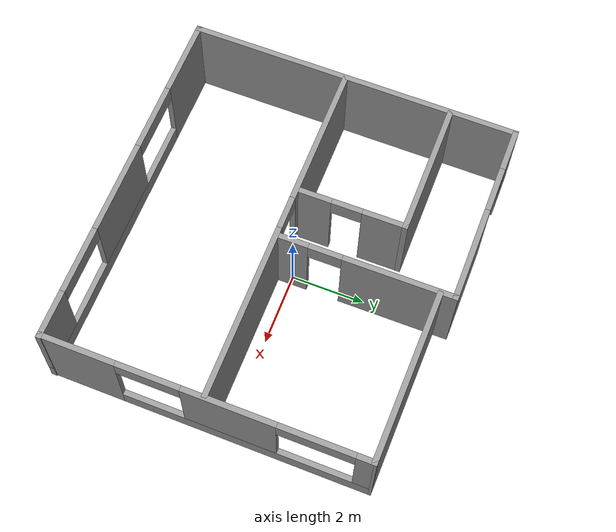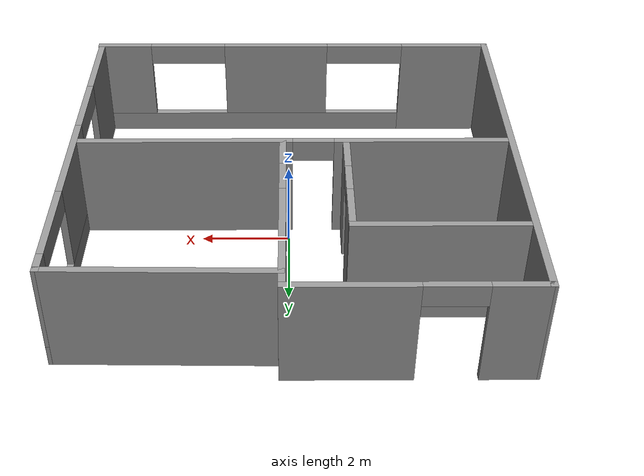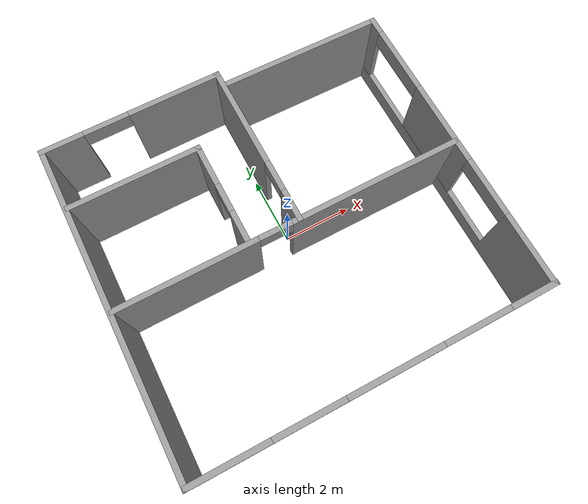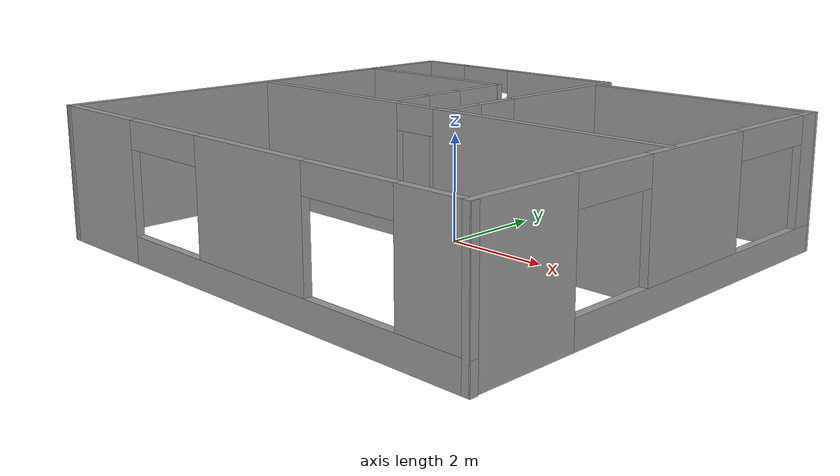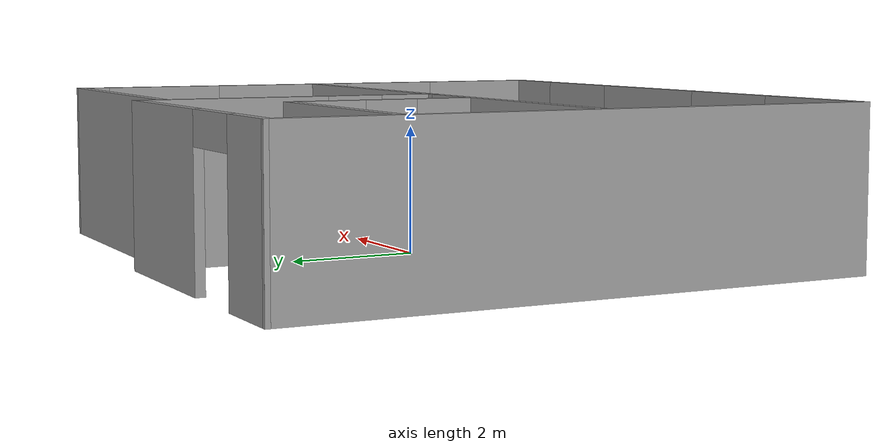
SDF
<?xml version='1.0'?>
<sdf version='1.7'>
  <model name='Model'>
    <pose>-0.095572 -0.20054 0 0 -0 0</pose>
    <link name='Wall_15'>
      <pose>0.226743 2.16049 0 0 -0 -1.57157</pose>
      <visual name='Wall_15_Visual_0'>
        <pose>-0.922792 0 1.25 0 -0 0</pose>
        <geometry>
          <box>
            <size>3.03442 0.15 2.5</size>
          </box>
        </geometry>
        <material>
          <script>
            <uri>file://media/materials/scripts/gazebo.material</uri>
            <name>Gazebo/Grey</name>
          </script>
          <ambient>1 1 1 1</ambient>
        </material>
        <meta>
          <layer>0</layer>
        </meta>
      </visual>
      <collision name='Wall_15_Collision_0'>
        <geometry>
          <box>
            <size>3.03442 0.15 2.5</size>
          </box>
        </geometry>
        <pose>-0.922792 0 1.25 0 -0 0</pose>
      </collision>
      <visual name='Wall_15_Visual_1'>
        <pose>1.96721 0 1.25 0 -0 0</pose>
        <geometry>
          <box>
            <size>0.945583 0.15 2.5</size>
          </box>
        </geometry>
        <material>
          <script>
            <uri>file://media/materials/scripts/gazebo.material</uri>
            <name>Gazebo/Grey</name>
          </script>
          <ambient>1 1 1 1</ambient>
        </material>
        <meta>
          <layer>0</layer>
        </meta>
      </visual>
      <collision name='Wall_15_Collision_1'>
        <geometry>
          <box>
            <size>0.945583 0.15 2.5</size>
          </box>
        </geometry>
        <pose>1.96721 0 1.25 0 -0 0</pose>
      </collision>
      <visual name='Wall_15_Visual_2'>
        <pose>1.04442 0 2.25 0 -0 0</pose>
        <geometry>
          <box>
            <size>0.9 0.15 0.5</size>
          </box>
        </geometry>
        <material>
          <script>
            <uri>file://media/materials/scripts/gazebo.material</uri>
            <name>Gazebo/Grey</name>
          </script>
          <ambient>1 1 1 1</ambient>
        </material>
        <meta>
          <layer>0</layer>
        </meta>
      </visual>
      <collision name='Wall_15_Collision_2'>
        <geometry>
          <box>
            <size>0.9 0.15 0.5</size>
          </box>
        </geometry>
        <pose>1.04442 0 2.25 0 -0 0</pose>
      </collision>
    </link>
    <link name='Wall_17'>
      <pose>0.002254 -0.209259 0 0 -0 0</pose>
      <visual name='Wall_17_Visual_0'>
        <pose>-2.89458 0 1.25 0 -0 0</pose>
        <geometry>
          <box>
            <size>3.96084 0.15 2.5</size>
          </box>
        </geometry>
        <material>
          <script>
            <uri>file://media/materials/scripts/gazebo.material</uri>
            <name>Gazebo/Grey</name>
          </script>
          <ambient>1 1 1 1</ambient>
        </material>
        <meta>
          <layer>0</layer>
        </meta>
      </visual>
      <collision name='Wall_17_Collision_0'>
        <geometry>
          <box>
            <size>3.96084 0.15 2.5</size>
          </box>
        </geometry>
        <pose>-2.89458 0 1.25 0 -0 0</pose>
      </collision>
      <visual name='Wall_17_Visual_1'>
        <pose>2.44192 0 1.25 0 -0 0</pose>
        <geometry>
          <box>
            <size>4.86616 0.15 2.5</size>
          </box>
        </geometry>
        <material>
          <script>
            <uri>file://media/materials/scripts/gazebo.material</uri>
            <name>Gazebo/Grey</name>
          </script>
          <ambient>1 1 1 1</ambient>
        </material>
        <meta>
          <layer>0</layer>
        </meta>
      </visual>
      <collision name='Wall_17_Collision_1'>
        <geometry>
          <box>
            <size>4.86616 0.15 2.5</size>
          </box>
        </geometry>
        <pose>2.44192 0 1.25 0 -0 0</pose>
      </collision>
      <visual name='Wall_17_Visual_2'>
        <pose>-0.452661 0 2.25 0 -0 0</pose>
        <geometry>
          <box>
            <size>0.923 0.15 0.5</size>
          </box>
        </geometry>
        <material>
          <script>
            <uri>file://media/materials/scripts/gazebo.material</uri>
            <name>Gazebo/Grey</name>
          </script>
          <ambient>1 1 1 1</ambient>
        </material>
        <meta>
          <layer>0</layer>
        </meta>
      </visual>
      <collision name='Wall_17_Collision_2'>
        <geometry>
          <box>
            <size>0.923 0.15 0.5</size>
          </box>
        </geometry>
        <pose>-0.452661 0 2.25 0 -0 0</pose>
      </collision>
    </link>
    <link name='Wall_21'>
      <collision name='Wall_21_Collision'>
        <geometry>
          <box>
            <size>3.75 0.15 2.5</size>
          </box>
        </geometry>
        <pose>0 0 1.25 0 -0 0</pose>
      </collision>
      <visual name='Wall_21_Visual'>
        <pose>0 0 1.25 0 -0 0</pose>
        <geometry>
          <box>
            <size>3.75 0.15 2.5</size>
          </box>
        </geometry>
        <material>
          <script>
            <uri>file://media/materials/scripts/gazebo.material</uri>
            <name>Gazebo/Grey</name>
          </script>
          <ambient>1 1 1 1</ambient>
        </material>
        <meta>
          <layer>0</layer>
        </meta>
      </visual>
      <pose>-2.97692 2.74812 0 0 -0 0</pose>
    </link>
    <link name='Wall_23'>
      <collision name='Wall_23_Collision'>
        <geometry>
          <box>
            <size>9.19333 0.15 2.5</size>
          </box>
        </geometry>
        <pose>0 0 1.25 0 -0 0</pose>
      </collision>
      <visual name='Wall_23_Visual'>
        <pose>0 0 1.25 0 -0 0</pose>
        <geometry>
          <box>
            <size>9.19333 0.15 2.5</size>
          </box>
        </geometry>
        <material>
          <script>
            <uri>file://media/materials/scripts/gazebo.material</uri>
            <name>Gazebo/Grey</name>
          </script>
          <ambient>1 1 1 1</ambient>
        </material>
        <meta>
          <layer>0</layer>
        </meta>
      </visual>
      <pose>-4.85203 0.01298 0 0 -0 -1.57747</pose>
    </link>
    <link name='Wall_24'>
      <pose>-0.000237 -4.52164 0 0 -0 -0.002673</pose>
      <visual name='Wall_24_Visual_0'>
        <pose>-3.85936 0 1.25 0 -0 0</pose>
        <geometry>
          <box>
            <size>2.155 0.15 2.5</size>
          </box>
        </geometry>
        <material>
          <script>
            <uri>file://media/materials/scripts/gazebo.material</uri>
            <name>Gazebo/Grey</name>
          </script>
          <ambient>1 1 1 1</ambient>
        </material>
        <meta>
          <layer>0</layer>
        </meta>
      </visual>
      <collision name='Wall_24_Collision_0'>
        <geometry>
          <box>
            <size>2.155 0.15 2.5</size>
          </box>
        </geometry>
        <pose>-3.85936 0 1.25 0 -0 0</pose>
      </collision>
      <visual name='Wall_24_Visual_1'>
        <pose>1.0775 0 0.25 0 -0 0</pose>
        <geometry>
          <box>
            <size>7.71873 0.15 0.5</size>
          </box>
        </geometry>
        <material>
          <script>
            <uri>file://media/materials/scripts/gazebo.material</uri>
            <name>Gazebo/Grey</name>
          </script>
          <ambient>1 1 1 1</ambient>
        </material>
        <meta>
          <layer>0</layer>
        </meta>
      </visual>
      <collision name='Wall_24_Collision_1'>
        <geometry>
          <box>
            <size>7.71873 0.15 0.5</size>
          </box>
        </geometry>
        <pose>1.0775 0 0.25 0 -0 0</pose>
      </collision>
      <visual name='Wall_24_Visual_2'>
        <pose>0.424132 0 1.5 0 -0 0</pose>
        <geometry>
          <box>
            <size>2.61199 0.15 2</size>
          </box>
        </geometry>
        <material>
          <script>
            <uri>file://media/materials/scripts/gazebo.material</uri>
            <name>Gazebo/Grey</name>
          </script>
          <ambient>1 1 1 1</ambient>
        </material>
        <meta>
          <layer>0</layer>
        </meta>
      </visual>
      <collision name='Wall_24_Collision_2'>
        <geometry>
          <box>
            <size>2.61199 0.15 2</size>
          </box>
        </geometry>
        <pose>0.424132 0 1.5 0 -0 0</pose>
      </collision>
      <visual name='Wall_24_Visual_3'>
        <pose>4.2665 0 1.5 0 -0 0</pose>
        <geometry>
          <box>
            <size>1.34074 0.15 2</size>
          </box>
        </geometry>
        <material>
          <script>
            <uri>file://media/materials/scripts/gazebo.material</uri>
            <name>Gazebo/Grey</name>
          </script>
          <ambient>1 1 1 1</ambient>
        </material>
        <meta>
          <layer>0</layer>
        </meta>
      </visual>
      <collision name='Wall_24_Collision_3'>
        <geometry>
          <box>
            <size>1.34074 0.15 2</size>
          </box>
        </geometry>
        <pose>4.2665 0 1.5 0 -0 0</pose>
      </collision>
      <visual name='Wall_24_Visual_4'>
        <pose>-1.83186 0 2.25 0 -0 0</pose>
        <geometry>
          <box>
            <size>1.9 0.15 0.5</size>
          </box>
        </geometry>
        <material>
          <script>
            <uri>file://media/materials/scripts/gazebo.material</uri>
            <name>Gazebo/Grey</name>
          </script>
          <ambient>1 1 1 1</ambient>
        </material>
        <meta>
          <layer>0</layer>
        </meta>
      </visual>
      <collision name='Wall_24_Collision_4'>
        <geometry>
          <box>
            <size>1.9 0.15 0.5</size>
          </box>
        </geometry>
        <pose>-1.83186 0 2.25 0 -0 0</pose>
      </collision>
      <visual name='Wall_24_Visual_5'>
        <pose>2.66313 0 2.25 0 -0 0</pose>
        <geometry>
          <box>
            <size>1.866 0.15 0.5</size>
          </box>
        </geometry>
        <material>
          <script>
            <uri>file://media/materials/scripts/gazebo.material</uri>
            <name>Gazebo/Grey</name>
          </script>
          <ambient>1 1 1 1</ambient>
        </material>
        <meta>
          <layer>0</layer>
        </meta>
      </visual>
      <collision name='Wall_24_Collision_5'>
        <geometry>
          <box>
            <size>1.866 0.15 0.5</size>
          </box>
        </geometry>
        <pose>2.66313 0 2.25 0 -0 0</pose>
      </collision>
    </link>
    <link name='Wall_25'>
      <pose>4.86161 -0.224579 0 0 -0 1.56613</pose>
      <visual name='Wall_25_Visual_0'>
        <pose>-3.34665 0 1.25 0 -0 0</pose>
        <geometry>
          <box>
            <size>2.07702 0.15 2.5</size>
          </box>
        </geometry>
        <material>
          <script>
            <uri>file://media/materials/scripts/gazebo.material</uri>
            <name>Gazebo/Grey</name>
          </script>
          <ambient>1 1 1 1</ambient>
        </material>
        <meta>
          <layer>0</layer>
        </meta>
      </visual>
      <collision name='Wall_25_Collision_0'>
        <geometry>
          <box>
            <size>2.07702 0.15 2.5</size>
          </box>
        </geometry>
        <pose>-3.34665 0 1.25 0 -0 0</pose>
      </collision>
      <visual name='Wall_25_Visual_1'>
        <pose>1.03851 0 0.25 0 -0 0</pose>
        <geometry>
          <box>
            <size>6.69331 0.15 0.5</size>
          </box>
        </geometry>
        <material>
          <script>
            <uri>file://media/materials/scripts/gazebo.material</uri>
            <name>Gazebo/Grey</name>
          </script>
          <ambient>1 1 1 1</ambient>
        </material>
        <meta>
          <layer>0</layer>
        </meta>
      </visual>
      <collision name='Wall_25_Collision_1'>
        <geometry>
          <box>
            <size>6.69331 0.15 0.5</size>
          </box>
        </geometry>
        <pose>1.03851 0 0.25 0 -0 0</pose>
      </collision>
      <visual name='Wall_25_Visual_2'>
        <pose>0.635605 0 1.5 0 -0 0</pose>
        <geometry>
          <box>
            <size>2.4775 0.15 2</size>
          </box>
        </geometry>
        <material>
          <script>
            <uri>file://media/materials/scripts/gazebo.material</uri>
            <name>Gazebo/Grey</name>
          </script>
          <ambient>1 1 1 1</ambient>
        </material>
        <meta>
          <layer>0</layer>
        </meta>
      </visual>
      <collision name='Wall_25_Collision_2'>
        <geometry>
          <box>
            <size>2.4775 0.15 2</size>
          </box>
        </geometry>
        <pose>0.635605 0 1.5 0 -0 0</pose>
      </collision>
      <visual name='Wall_25_Visual_3'>
        <pose>4.12426 0 1.5 0 -0 0</pose>
        <geometry>
          <box>
            <size>0.521808 0.15 2</size>
          </box>
        </geometry>
        <material>
          <script>
            <uri>file://media/materials/scripts/gazebo.material</uri>
            <name>Gazebo/Grey</name>
          </script>
          <ambient>1 1 1 1</ambient>
        </material>
        <meta>
          <layer>0</layer>
        </meta>
      </visual>
      <collision name='Wall_25_Collision_3'>
        <geometry>
          <box>
            <size>0.521808 0.15 2</size>
          </box>
        </geometry>
        <pose>4.12426 0 1.5 0 -0 0</pose>
      </collision>
      <visual name='Wall_25_Visual_4'>
        <pose>-1.45565 0 2.25 0 -0 0</pose>
        <geometry>
          <box>
            <size>1.705 0.15 0.5</size>
          </box>
        </geometry>
        <material>
          <script>
            <uri>file://media/materials/scripts/gazebo.material</uri>
            <name>Gazebo/Grey</name>
          </script>
          <ambient>1 1 1 1</ambient>
        </material>
        <meta>
          <layer>0</layer>
        </meta>
      </visual>
      <collision name='Wall_25_Collision_4'>
        <geometry>
          <box>
            <size>1.705 0.15 0.5</size>
          </box>
        </geometry>
        <pose>-1.45565 0 2.25 0 -0 0</pose>
      </collision>
      <visual name='Wall_25_Visual_5'>
        <pose>2.86885 0 2.25 0 -0 0</pose>
        <geometry>
          <box>
            <size>1.989 0.15 0.5</size>
          </box>
        </geometry>
        <material>
          <script>
            <uri>file://media/materials/scripts/gazebo.material</uri>
            <name>Gazebo/Grey</name>
          </script>
          <ambient>1 1 1 1</ambient>
        </material>
        <meta>
          <layer>0</layer>
        </meta>
      </visual>
      <collision name='Wall_25_Collision_5'>
        <geometry>
          <box>
            <size>1.989 0.15 0.5</size>
          </box>
        </geometry>
        <pose>2.86885 0 2.25 0 -0 0</pose>
      </collision>
    </link>
    <link name='Wall_27'>
      <collision name='Wall_27_Collision'>
        <geometry>
          <box>
            <size>4.78085 0.15 2.5</size>
          </box>
        </geometry>
        <pose>0 0 1.25 0 -0 0</pose>
      </collision>
      <visual name='Wall_27_Visual'>
        <pose>0 0 1.25 0 -0 0</pose>
        <geometry>
          <box>
            <size>4.78085 0.15 2.5</size>
          </box>
        </geometry>
        <material>
          <script>
            <uri>file://media/materials/scripts/gazebo.material</uri>
            <name>Gazebo/Grey</name>
          </script>
          <ambient>1 1 1 1</ambient>
        </material>
        <meta>
          <layer>0</layer>
        </meta>
      </visual>
      <pose>2.5665 4.11565 0 0 -0 3.12856</pose>
    </link>
    <link name='Wall_30'>
      <pose>-2.29686 4.5346 0 0 -0 0</pose>
      <visual name='Wall_30_Visual_0'>
        <pose>-1.98663 0 1.25 0 -0 0</pose>
        <geometry>
          <box>
            <size>1.22674 0.15 2.5</size>
          </box>
        </geometry>
        <material>
          <script>
            <uri>file://media/materials/scripts/gazebo.material</uri>
            <name>Gazebo/Grey</name>
          </script>
          <ambient>1 1 1 1</ambient>
        </material>
        <meta>
          <layer>0</layer>
        </meta>
      </visual>
      <collision name='Wall_30_Collision_0'>
        <geometry>
          <box>
            <size>1.22674 0.15 2.5</size>
          </box>
        </geometry>
        <pose>-1.98663 0 1.25 0 -0 0</pose>
      </collision>
      <visual name='Wall_30_Visual_1'>
        <pose>1.25576 0 1.25 0 -0 0</pose>
        <geometry>
          <box>
            <size>2.68848 0.15 2.5</size>
          </box>
        </geometry>
        <material>
          <script>
            <uri>file://media/materials/scripts/gazebo.material</uri>
            <name>Gazebo/Grey</name>
          </script>
          <ambient>1 1 1 1</ambient>
        </material>
        <meta>
          <layer>0</layer>
        </meta>
      </visual>
      <collision name='Wall_30_Collision_1'>
        <geometry>
          <box>
            <size>2.68848 0.15 2.5</size>
          </box>
        </geometry>
        <pose>1.25576 0 1.25 0 -0 0</pose>
      </collision>
      <visual name='Wall_30_Visual_2'>
        <pose>-0.730868 0 2.25 0 -0 0</pose>
        <geometry>
          <box>
            <size>1.28478 0.15 0.5</size>
          </box>
        </geometry>
        <material>
          <script>
            <uri>file://media/materials/scripts/gazebo.material</uri>
            <name>Gazebo/Grey</name>
          </script>
          <ambient>1 1 1 1</ambient>
        </material>
        <meta>
          <layer>0</layer>
        </meta>
      </visual>
      <collision name='Wall_30_Collision_2'>
        <geometry>
          <box>
            <size>1.28478 0.15 0.5</size>
          </box>
        </geometry>
        <pose>-0.730868 0 2.25 0 -0 0</pose>
      </collision>
    </link>
    <link name='Wall_9'>
      <pose>-1.18041 1.26957 0 0 -0 -1.5708</pose>
      <visual name='Wall_9_Visual_0'>
        <pose>-0.936039 0 1.25 0 -0 0</pose>
        <geometry>
          <box>
            <size>1.22792 0.15 2.5</size>
          </box>
        </geometry>
        <material>
          <script>
            <uri>file://media/materials/scripts/gazebo.material</uri>
            <name>Gazebo/Grey</name>
          </script>
          <ambient>1 1 1 1</ambient>
        </material>
        <meta>
          <layer>0</layer>
        </meta>
      </visual>
      <collision name='Wall_9_Collision_0'>
        <geometry>
          <box>
            <size>1.22792 0.15 2.5</size>
          </box>
        </geometry>
        <pose>-0.936039 0 1.25 0 -0 0</pose>
      </collision>
      <visual name='Wall_9_Visual_1'>
        <pose>1.02994 0 1.25 0 -0 0</pose>
        <geometry>
          <box>
            <size>1.04013 0.15 2.5</size>
          </box>
        </geometry>
        <material>
          <script>
            <uri>file://media/materials/scripts/gazebo.material</uri>
            <name>Gazebo/Grey</name>
          </script>
          <ambient>1 1 1 1</ambient>
        </material>
        <meta>
          <layer>0</layer>
        </meta>
      </visual>
      <collision name='Wall_9_Collision_1'>
        <geometry>
          <box>
            <size>1.04013 0.15 2.5</size>
          </box>
        </geometry>
        <pose>1.02994 0 1.25 0 -0 0</pose>
      </collision>
      <visual name='Wall_9_Visual_2'>
        <pose>0.093896 0 2.25 0 -0 0</pose>
        <geometry>
          <box>
            <size>0.831947 0.15 0.5</size>
          </box>
        </geometry>
        <material>
          <script>
            <uri>file://media/materials/scripts/gazebo.material</uri>
            <name>Gazebo/Grey</name>
          </script>
          <ambient>1 1 1 1</ambient>
        </material>
        <meta>
          <layer>0</layer>
        </meta>
      </visual>
      <collision name='Wall_9_Collision_2'>
        <geometry>
          <box>
            <size>0.831947 0.15 0.5</size>
          </box>
        </geometry>
        <pose>0.093896 0 2.25 0 -0 0</pose>
      </collision>
    </link>
    <static>1</static>
  </model>
</sdf>
